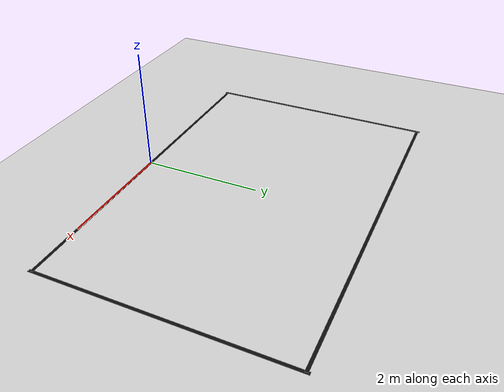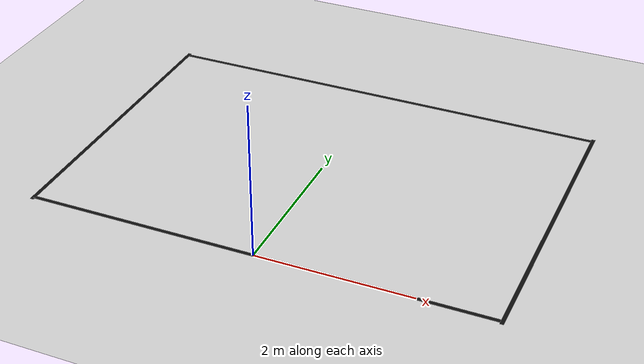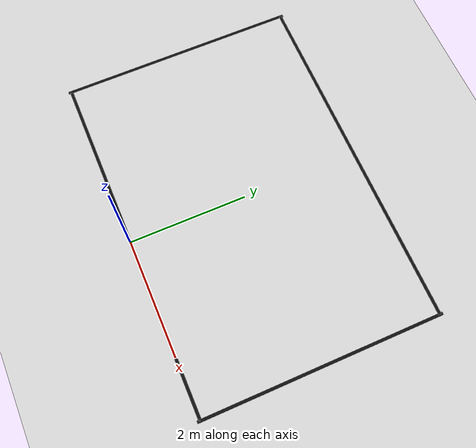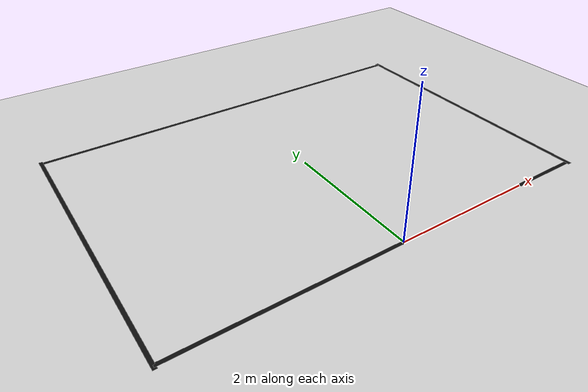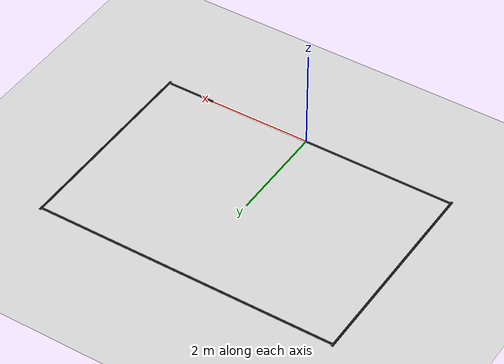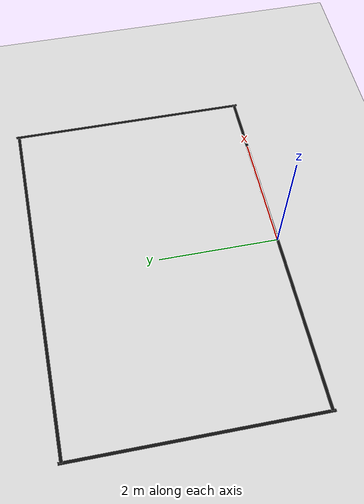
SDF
<?xml version="1.0"?>
<sdf version="1.6">
  <world name="rectangle">

    <include>
      <uri>model://ground_plane</uri>
    </include>

    <include>
      <uri>model://sun</uri>
    </include>

    <!-- Bottom: robot starts here -->
    <model name="bottom">
      <static>true</static>
      <pose>0 0 0.001 0 0 0</pose>
      <link name="link">
        <visual name="visual">
          <geometry><box><size>6.0 0.05 0.001</size></box></geometry>
          <material>
            <ambient>0.05 0.05 0.05 1</ambient>
            <diffuse>0.05 0.05 0.05 1</diffuse>
          </material>
        </visual>
      </link>
    </model>

    <!-- Right side -->
    <model name="right">
      <static>true</static>
      <pose>3 2 0.001 0 0 1.5708</pose>
      <link name="link">
        <visual name="visual">
          <geometry><box><size>4.1 0.05 0.001</size></box></geometry>
          <material>
            <ambient>0.05 0.05 0.05 1</ambient>
            <diffuse>0.05 0.05 0.05 1</diffuse>
          </material>
        </visual>
      </link>
    </model>

    <!-- Top -->
    <model name="top">
      <static>true</static>
      <pose>0 4 0.001 0 0 0</pose>
      <link name="link">
        <visual name="visual">
          <geometry><box><size>6.0 0.05 0.001</size></box></geometry>
          <material>
            <ambient>0.05 0.05 0.05 1</ambient>
            <diffuse>0.05 0.05 0.05 1</diffuse>
          </material>
        </visual>
      </link>
    </model>

    <!-- Left side -->
    <model name="left">
      <static>true</static>
      <pose>-3 2 0.001 0 0 1.5708</pose>
      <link name="link">
        <visual name="visual">
          <geometry><box><size>4.1 0.05 0.001</size></box></geometry>
          <material>
            <ambient>0.05 0.05 0.05 1</ambient>
            <diffuse>0.05 0.05 0.05 1</diffuse>
          </material>
        </visual>
      </link>
    </model>

  </world>
</sdf>
